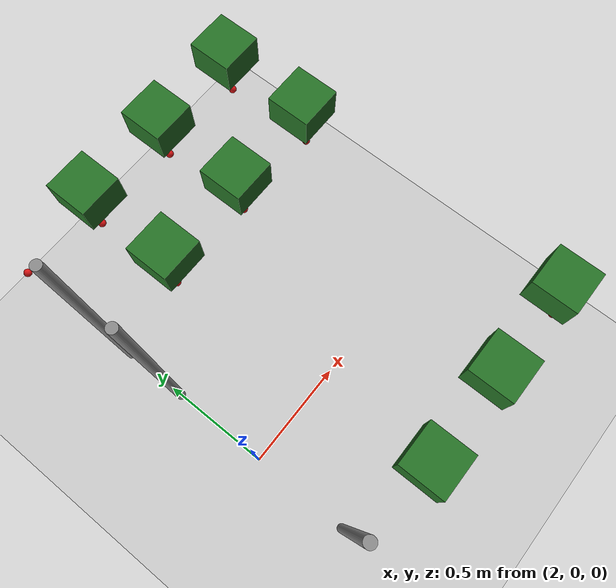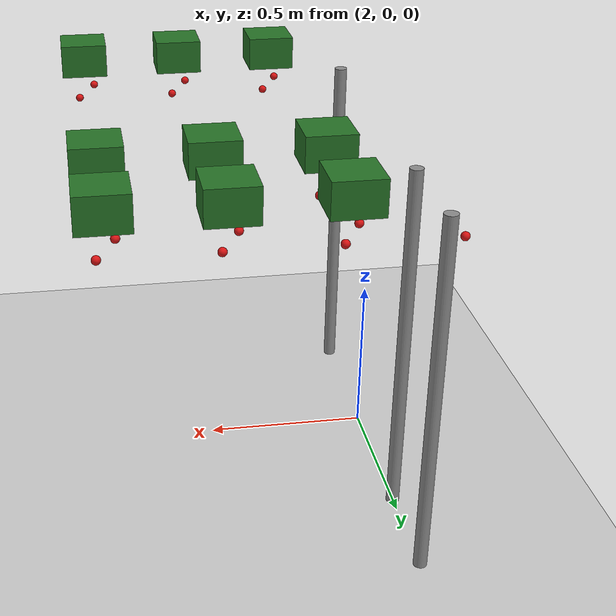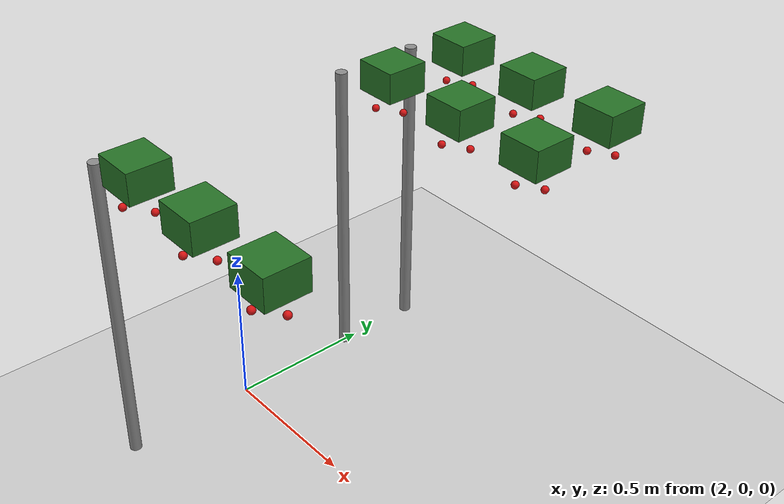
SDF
<sdf version="1.7">
 <world name="irish_polytunnel">
  <include><uri>model://sun</uri></include>
  <include><uri>model://ground_plane</uri></include>
  <model name="row0_L_post1">
   <static>true</static>
   <pose>2.000 0.450 0.550 0 0 0</pose>
   <link name="link">
    <collision name="collision">
     <geometry><cylinder><radius>0.02</radius><length>1.100</length></cylinder></geometry>
    </collision>
    <visual name="visual">
     <geometry><cylinder><radius>0.02</radius><length>1.100</length></cylinder></geometry>
     <material><ambient>0.5 0.5 0.5 1</ambient><diffuse>0.55 0.55 0.55 1</diffuse></material>
    </visual>
   </link>
  </model>
  <model name="row0_L_plant7_foliage">
   <static>true</static>
   <pose>2.250 0.450 1.180 0 0 0</pose>
   <link name="link">
    <visual name="visual">
     <geometry><box><size>0.14 0.14 0.10</size></box></geometry>
     <material><ambient>0.10 0.35 0.10 1</ambient><diffuse>0.15 0.45 0.15 1</diffuse></material>
    </visual>
   </link>
  </model>
  <model name="row0_L_plant7_berry_0">
   <static>true</static>
   <pose>2.220 0.410 1.070 0 0 0</pose>
   <link name="link">
    <visual name="visual">
     <geometry><sphere><radius>0.012</radius></sphere></geometry>
     <material><ambient>0.75 0.05 0.05 1</ambient><diffuse>0.85 0.08 0.08 1</diffuse></material>
    </visual>
   </link>
  </model>
  <model name="row0_L_plant7_berry_1">
   <static>true</static>
   <pose>2.270 0.480 1.050 0 0 0</pose>
   <link name="link">
    <visual name="visual">
     <geometry><sphere><radius>0.012</radius></sphere></geometry>
     <material><ambient>0.75 0.05 0.05 1</ambient><diffuse>0.85 0.08 0.08 1</diffuse></material>
    </visual>
   </link>
  </model>
  <model name="row0_L_plant8_foliage">
   <static>true</static>
   <pose>2.550 0.450 1.180 0 0 0</pose>
   <link name="link">
    <visual name="visual">
     <geometry><box><size>0.14 0.14 0.10</size></box></geometry>
     <material><ambient>0.10 0.35 0.10 1</ambient><diffuse>0.15 0.45 0.15 1</diffuse></material>
    </visual>
   </link>
  </model>
  <model name="row0_L_plant8_berry_0">
   <static>true</static>
   <pose>2.520 0.410 1.070 0 0 0</pose>
   <link name="link">
    <visual name="visual">
     <geometry><sphere><radius>0.012</radius></sphere></geometry>
     <material><ambient>0.75 0.05 0.05 1</ambient><diffuse>0.85 0.08 0.08 1</diffuse></material>
    </visual>
   </link>
  </model>
  <model name="row0_L_plant8_berry_1">
   <static>true</static>
   <pose>2.570 0.480 1.050 0 0 0</pose>
   <link name="link">
    <visual name="visual">
     <geometry><sphere><radius>0.012</radius></sphere></geometry>
     <material><ambient>0.75 0.05 0.05 1</ambient><diffuse>0.85 0.08 0.08 1</diffuse></material>
    </visual>
   </link>
  </model>
  <model name="row0_L_plant9_foliage">
   <static>true</static>
   <pose>2.850 0.450 1.180 0 0 0</pose>
   <link name="link">
    <visual name="visual">
     <geometry><box><size>0.14 0.14 0.10</size></box></geometry>
     <material><ambient>0.10 0.35 0.10 1</ambient><diffuse>0.15 0.45 0.15 1</diffuse></material>
    </visual>
   </link>
  </model>
  <model name="row0_L_plant9_berry_0">
   <static>true</static>
   <pose>2.820 0.410 1.070 0 0 0</pose>
   <link name="link">
    <visual name="visual">
     <geometry><sphere><radius>0.012</radius></sphere></geometry>
     <material><ambient>0.75 0.05 0.05 1</ambient><diffuse>0.85 0.08 0.08 1</diffuse></material>
    </visual>
   </link>
  </model>
  <model name="row0_L_plant9_berry_1">
   <static>true</static>
   <pose>2.870 0.480 1.050 0 0 0</pose>
   <link name="link">
    <visual name="visual">
     <geometry><sphere><radius>0.012</radius></sphere></geometry>
     <material><ambient>0.75 0.05 0.05 1</ambient><diffuse>0.85 0.08 0.08 1</diffuse></material>
    </visual>
   </link>
  </model>
  <model name="row0_R_post1">
   <static>true</static>
   <pose>2.000 -0.450 0.550 0 0 0</pose>
   <link name="link">
    <collision name="collision">
     <geometry><cylinder><radius>0.02</radius><length>1.100</length></cylinder></geometry>
    </collision>
    <visual name="visual">
     <geometry><cylinder><radius>0.02</radius><length>1.100</length></cylinder></geometry>
     <material><ambient>0.5 0.5 0.5 1</ambient><diffuse>0.55 0.55 0.55 1</diffuse></material>
    </visual>
   </link>
  </model>
  <model name="row0_R_plant7_foliage">
   <static>true</static>
   <pose>2.250 -0.450 1.180 0 0 0</pose>
   <link name="link">
    <visual name="visual">
     <geometry><box><size>0.14 0.14 0.10</size></box></geometry>
     <material><ambient>0.10 0.35 0.10 1</ambient><diffuse>0.15 0.45 0.15 1</diffuse></material>
    </visual>
   </link>
  </model>
  <model name="row0_R_plant7_berry_0">
   <static>true</static>
   <pose>2.220 -0.490 1.070 0 0 0</pose>
   <link name="link">
    <visual name="visual">
     <geometry><sphere><radius>0.012</radius></sphere></geometry>
     <material><ambient>0.75 0.05 0.05 1</ambient><diffuse>0.85 0.08 0.08 1</diffuse></material>
    </visual>
   </link>
  </model>
  <model name="row0_R_plant7_berry_1">
   <static>true</static>
   <pose>2.270 -0.420 1.050 0 0 0</pose>
   <link name="link">
    <visual name="visual">
     <geometry><sphere><radius>0.012</radius></sphere></geometry>
     <material><ambient>0.75 0.05 0.05 1</ambient><diffuse>0.85 0.08 0.08 1</diffuse></material>
    </visual>
   </link>
  </model>
  <model name="row0_R_plant8_foliage">
   <static>true</static>
   <pose>2.550 -0.450 1.180 0 0 0</pose>
   <link name="link">
    <visual name="visual">
     <geometry><box><size>0.14 0.14 0.10</size></box></geometry>
     <material><ambient>0.10 0.35 0.10 1</ambient><diffuse>0.15 0.45 0.15 1</diffuse></material>
    </visual>
   </link>
  </model>
  <model name="row0_R_plant8_berry_0">
   <static>true</static>
   <pose>2.520 -0.490 1.070 0 0 0</pose>
   <link name="link">
    <visual name="visual">
     <geometry><sphere><radius>0.012</radius></sphere></geometry>
     <material><ambient>0.75 0.05 0.05 1</ambient><diffuse>0.85 0.08 0.08 1</diffuse></material>
    </visual>
   </link>
  </model>
  <model name="row0_R_plant8_berry_1">
   <static>true</static>
   <pose>2.570 -0.420 1.050 0 0 0</pose>
   <link name="link">
    <visual name="visual">
     <geometry><sphere><radius>0.012</radius></sphere></geometry>
     <material><ambient>0.75 0.05 0.05 1</ambient><diffuse>0.85 0.08 0.08 1</diffuse></material>
    </visual>
   </link>
  </model>
  <model name="row0_R_plant9_foliage">
   <static>true</static>
   <pose>2.850 -0.450 1.180 0 0 0</pose>
   <link name="link">
    <visual name="visual">
     <geometry><box><size>0.14 0.14 0.10</size></box></geometry>
     <material><ambient>0.10 0.35 0.10 1</ambient><diffuse>0.15 0.45 0.15 1</diffuse></material>
    </visual>
   </link>
  </model>
  <model name="row0_R_plant9_berry_0">
   <static>true</static>
   <pose>2.820 -0.490 1.070 0 0 0</pose>
   <link name="link">
    <visual name="visual">
     <geometry><sphere><radius>0.012</radius></sphere></geometry>
     <material><ambient>0.75 0.05 0.05 1</ambient><diffuse>0.85 0.08 0.08 1</diffuse></material>
    </visual>
   </link>
  </model>
  <model name="row0_R_plant9_berry_1">
   <static>true</static>
   <pose>2.870 -0.420 1.050 0 0 0</pose>
   <link name="link">
    <visual name="visual">
     <geometry><sphere><radius>0.012</radius></sphere></geometry>
     <material><ambient>0.75 0.05 0.05 1</ambient><diffuse>0.85 0.08 0.08 1</diffuse></material>
    </visual>
   </link>
  </model>
  <model name="row1_R_post1">
   <static>true</static>
   <pose>2.000 0.750 0.550 0 0 0</pose>
   <link name="link">
    <collision name="collision">
     <geometry><cylinder><radius>0.02</radius><length>1.100</length></cylinder></geometry>
    </collision>
    <visual name="visual">
     <geometry><cylinder><radius>0.02</radius><length>1.100</length></cylinder></geometry>
     <material><ambient>0.5 0.5 0.5 1</ambient><diffuse>0.55 0.55 0.55 1</diffuse></material>
    </visual>
   </link>
  </model>
  <model name="row1_R_plant6_berry_1">
   <static>true</static>
   <pose>1.970 0.780 1.050 0 0 0</pose>
   <link name="link">
    <visual name="visual">
     <geometry><sphere><radius>0.012</radius></sphere></geometry>
     <material><ambient>0.75 0.05 0.05 1</ambient><diffuse>0.85 0.08 0.08 1</diffuse></material>
    </visual>
   </link>
  </model>
  <model name="row1_R_plant7_foliage">
   <static>true</static>
   <pose>2.250 0.750 1.180 0 0 0</pose>
   <link name="link">
    <visual name="visual">
     <geometry><box><size>0.14 0.14 0.10</size></box></geometry>
     <material><ambient>0.10 0.35 0.10 1</ambient><diffuse>0.15 0.45 0.15 1</diffuse></material>
    </visual>
   </link>
  </model>
  <model name="row1_R_plant7_berry_0">
   <static>true</static>
   <pose>2.220 0.710 1.070 0 0 0</pose>
   <link name="link">
    <visual name="visual">
     <geometry><sphere><radius>0.012</radius></sphere></geometry>
     <material><ambient>0.75 0.05 0.05 1</ambient><diffuse>0.85 0.08 0.08 1</diffuse></material>
    </visual>
   </link>
  </model>
  <model name="row1_R_plant7_berry_1">
   <static>true</static>
   <pose>2.270 0.780 1.050 0 0 0</pose>
   <link name="link">
    <visual name="visual">
     <geometry><sphere><radius>0.012</radius></sphere></geometry>
     <material><ambient>0.75 0.05 0.05 1</ambient><diffuse>0.85 0.08 0.08 1</diffuse></material>
    </visual>
   </link>
  </model>
  <model name="row1_R_plant8_foliage">
   <static>true</static>
   <pose>2.550 0.750 1.180 0 0 0</pose>
   <link name="link">
    <visual name="visual">
     <geometry><box><size>0.14 0.14 0.10</size></box></geometry>
     <material><ambient>0.10 0.35 0.10 1</ambient><diffuse>0.15 0.45 0.15 1</diffuse></material>
    </visual>
   </link>
  </model>
  <model name="row1_R_plant8_berry_0">
   <static>true</static>
   <pose>2.520 0.710 1.070 0 0 0</pose>
   <link name="link">
    <visual name="visual">
     <geometry><sphere><radius>0.012</radius></sphere></geometry>
     <material><ambient>0.75 0.05 0.05 1</ambient><diffuse>0.85 0.08 0.08 1</diffuse></material>
    </visual>
   </link>
  </model>
  <model name="row1_R_plant8_berry_1">
   <static>true</static>
   <pose>2.570 0.780 1.050 0 0 0</pose>
   <link name="link">
    <visual name="visual">
     <geometry><sphere><radius>0.012</radius></sphere></geometry>
     <material><ambient>0.75 0.05 0.05 1</ambient><diffuse>0.85 0.08 0.08 1</diffuse></material>
    </visual>
   </link>
  </model>
  <model name="row1_R_plant9_foliage">
   <static>true</static>
   <pose>2.850 0.750 1.180 0 0 0</pose>
   <link name="link">
    <visual name="visual">
     <geometry><box><size>0.14 0.14 0.10</size></box></geometry>
     <material><ambient>0.10 0.35 0.10 1</ambient><diffuse>0.15 0.45 0.15 1</diffuse></material>
    </visual>
   </link>
  </model>
  <model name="row1_R_plant9_berry_0">
   <static>true</static>
   <pose>2.820 0.710 1.070 0 0 0</pose>
   <link name="link">
    <visual name="visual">
     <geometry><sphere><radius>0.012</radius></sphere></geometry>
     <material><ambient>0.75 0.05 0.05 1</ambient><diffuse>0.85 0.08 0.08 1</diffuse></material>
    </visual>
   </link>
  </model>
  <model name="row1_R_plant9_berry_1">
   <static>true</static>
   <pose>2.870 0.780 1.050 0 0 0</pose>
   <link name="link">
    <visual name="visual">
     <geometry><sphere><radius>0.012</radius></sphere></geometry>
     <material><ambient>0.75 0.05 0.05 1</ambient><diffuse>0.85 0.08 0.08 1</diffuse></material>
    </visual>
   </link>
  </model>
 </world>
</sdf>
